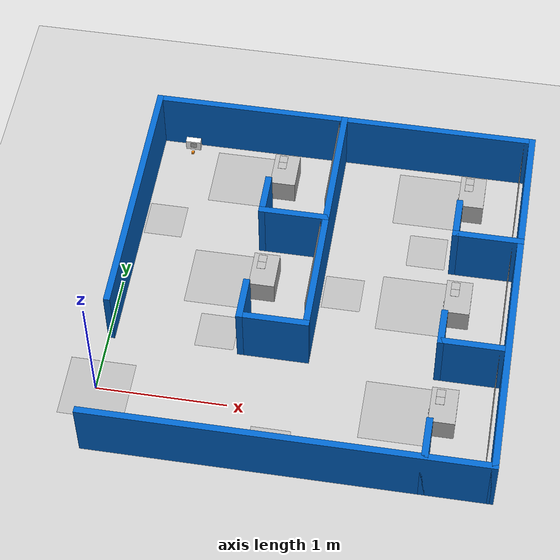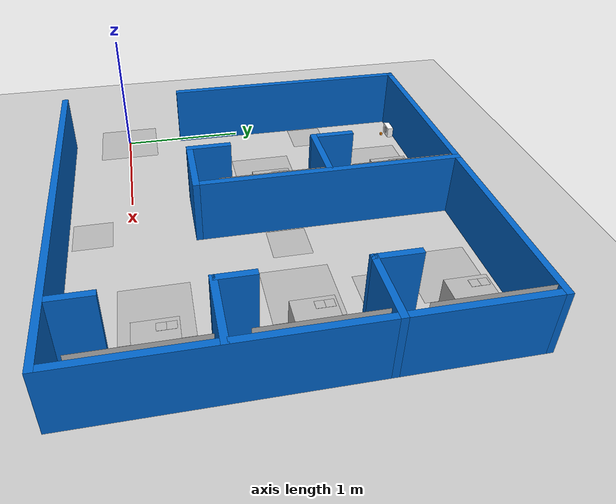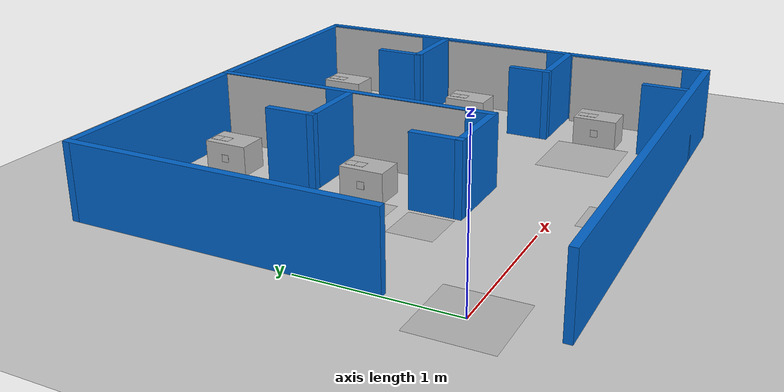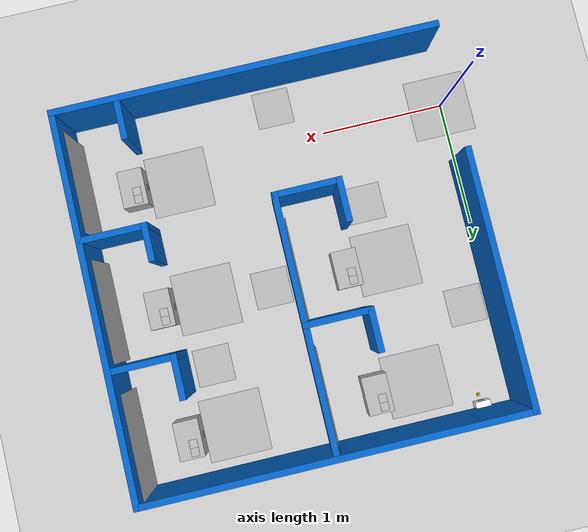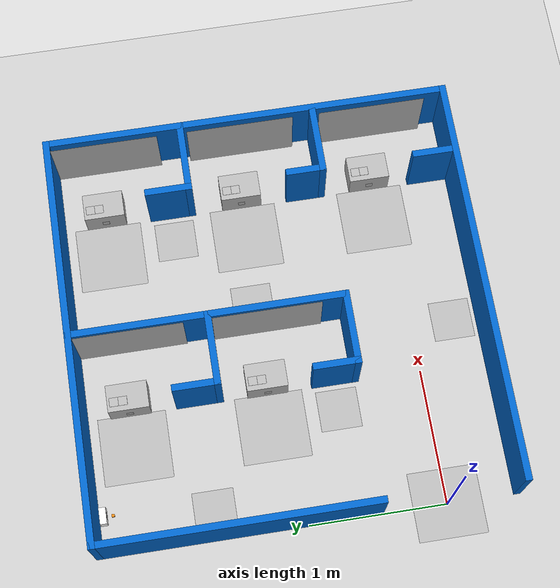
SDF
<sdf version="1.7">
 <world name="default">
  <light name="sun" type="directional">
   <pose>0 0 10 0 -0 0</pose>
   <diffuse>0.8 0.8 0.8 1</diffuse>
   <specular>0.2 0.2 0.2 1</specular>
   <attenuation>
    <range>1000</range>
    <constant>0.9</constant>
    <linear>0.01</linear>
    <quadratic>0.001</quadratic>
   </attenuation>
   <direction>-0.5 0.1 -0.9</direction>
   <spot><inner_angle>0</inner_angle><outer_angle>0</outer_angle><falloff>0</falloff></spot>
  </light>
  <model name="ground_plane">
   <static>1</static>
   <link name="link">
    <collision name="collision">
     <geometry><plane><normal>0 0 1</normal><size>100 100</size></plane></geometry>
     <surface>
      <contact><collide_bitmask>65535</collide_bitmask></contact>
      <friction><ode><mu>100</mu><mu2>50</mu2></ode></friction>
     </surface>
    </collision>
    <visual name="visual">
     <cast_shadows>0</cast_shadows>
     <geometry><plane><normal>0 0 1</normal><size>100 100</size></plane></geometry>
     <material>
      <script><uri>file://media/materials/scripts/gazebo.material</uri><name>Gazebo/Grey</name></script>
     </material>
    </visual>
   </link>
  </model>
  <gravity>0 0 -9.8</gravity>
  <magnetic_field>6e-06 2.3e-05 -4.2e-05</magnetic_field>
  <atmosphere type="adiabatic"/>
  <physics type="ode">
   <max_step_size>0.001</max_step_size>
   <real_time_factor>1</real_time_factor>
   <real_time_update_rate>1000</real_time_update_rate>
  </physics>
  <scene><ambient>0.4 0.4 0.4 1</ambient><background>0.7 0.7 0.7 1</background><shadows>1</shadows></scene>
  <spherical_coordinates>
   <surface_model>EARTH_WGS84</surface_model>
   <latitude_deg>0</latitude_deg>
   <longitude_deg>0</longitude_deg>
   <elevation>0</elevation>
   <heading_deg>0</heading_deg>
  </spherical_coordinates>
  <model name="reinovo_raicom_oryxbot">
   <link name="link_0">
    <inertial>
     <mass>1</mass>
     <inertia>
      <ixx>0.166667</ixx>
      <ixy>0</ixy>
      <ixz>0</ixz>
      <iyy>0.166667</iyy>
      <iyz>0</iyz>
      <izz>0.166667</izz>
     </inertia>
    </inertial>
    <pose>-1.32 1.12 0.01 0 0 -1.5707</pose>
    <visual name="visual">
     <geometry><box><size>0.02 0.02 0.02</size></box></geometry>
     <material>
      <lighting>1</lighting>
      <script><uri>file://media/materials/scripts/gazebo.material</uri><name>Gazebo/Orange</name></script>
      <shader type="pixel"><normal_map>__default__</normal_map></shader>
     </material>
    </visual>
    <collision name="collision">
     <geometry><box><size>0.02 0.02 0.02</size></box></geometry>
     <surface>
      <friction>
       <ode><mu>1</mu><mu2>1</mu2><fdir1>0 0 0</fdir1><slip1>0</slip1><slip2>0</slip2></ode>
       <torsional>
        <coefficient>1</coefficient>
        <patch_radius>0</patch_radius>
        <surface_radius>0</surface_radius>
        <use_patch_radius>1</use_patch_radius>
        <ode><slip>0</slip></ode>
       </torsional>
      </friction>
      <bounce><restitution_coefficient>0</restitution_coefficient><threshold>1e+06</threshold></bounce>
      <contact>
       <collide_without_contact>0</collide_without_contact>
       <collide_without_contact_bitmask>1</collide_without_contact_bitmask>
       <collide_bitmask>1</collide_bitmask>
       <ode>
        <soft_cfm>0</soft_cfm>
        <soft_erp>0.2</soft_erp>
        <kp>1e+13</kp>
        <kd>1</kd>
        <max_vel>0.01</max_vel>
        <min_depth>0</min_depth>
       </ode>
       <bullet>
        <split_impulse>1</split_impulse>
        <split_impulse_penetration_threshold>-0.01</split_impulse_penetration_threshold>
        <soft_cfm>0</soft_cfm>
        <soft_erp>0.2</soft_erp>
        <kp>1e+13</kp>
        <kd>1</kd>
       </bullet>
      </contact>
     </surface>
    </collision>
    <sensor name="charge_contact" type="contact">
     <contact><collision>collision</collision><topic>__default_topic__</topic></contact>
     <plugin name="my_plugin" filename="libChargeContact.so"><object>charge_port</object></plugin>
    </sensor>
   </link>
   <model name="rei_begin">
    <link name="link_0">
     <visual name="visual">
      <geometry><mesh><uri>model://reinovo_raicom_oryxbot/rei_begin/meshes/begin.dae</uri></mesh></geometry>
     </visual>
     <inertial>
      <inertia><ixx>1</ixx><ixy>0</ixy><ixz>0</ixz><iyy>1</iyy><iyz>0</iyz><izz>1</izz></inertia>
      <mass>1</mass>
     </inertial>
    </link>
    <pose>-1.6 -1.25 0.001 0 -0 0</pose>
   </model>
   <model name="rei_factory3">
    <link name="link_0">
     <visual name="visual">
      <geometry><mesh><uri>model://reinovo_raicom_oryxbot/rei_factory3/meshes/factory3.dae</uri></mesh></geometry>
     </visual>
     <inertial>
      <inertia><ixx>1</ixx><ixy>0</ixy><ixz>0</ixz><iyy>1</iyy><iyz>0</iyz><izz>1</izz></inertia>
      <mass>1</mass>
     </inertial>
    </link>
    <pose>1.35 -1.2 0.25 1.5707 -0 -1.5707</pose>
   </model>
   <model name="rei_block_stage">
    <static>0</static>
    <link name="block_stage_link">
     <inertial>
      <mass>10</mass>
      <inertia><ixx>1</ixx><ixy>0</ixy><ixz>0</ixz><iyy>1</iyy><iyz>0</iyz><izz>1</izz></inertia>
     </inertial>
     <collision name="collision"><geometry><box><size>0.2 0.3 0.2</size></box></geometry></collision>
     <visual name="visual_1">
      <cast_shadows>0</cast_shadows>
      <geometry><box><size>0.2 0.3 0.2</size></box></geometry>
     </visual>
     <visual name="visual_2">
      <pose>0.105 0 0 0 -1.5707 0</pose>
      <cast_shadows>0</cast_shadows>
      <geometry><box><size>0.05 0.05 0.001</size></box></geometry>
      <material>
       <script>
        <uri>model://rei_block_stage/materials/scripts</uri>
        <uri>model://rei_block_stage/materials/textures</uri>
        <name>reinovo/rei_block_stage</name>
       </script>
      </material>
     </visual>
     <visual name="visual_3">
      <pose>0.03 0.1 -0.105 0 -0 0</pose>
      <cast_shadows>0</cast_shadows>
      <geometry><box><size>0.065 0.065 0.001</size></box></geometry>
      <material>
       <script>
        <uri>model://rei_block_stage/materials_goal/scripts</uri>
        <uri>model://rei_block_stage/materials_goal/textures</uri>
        <name>reinovo/rei_goal</name>
       </script>
      </material>
     </visual>
     <visual name="visual_4">
      <pose>0.03 0.035 -0.105 0 -0 0</pose>
      <cast_shadows>0</cast_shadows>
      <geometry><box><size>0.065 0.065 0.001</size></box></geometry>
      <material>
       <script>
        <uri>model://rei_block_stage/materials_goal/scripts</uri>
        <uri>model://rei_block_stage/materials_goal/textures</uri>
        <name>reinovo/rei_goal</name>
       </script>
      </material>
     </visual>
    </link>
    <pose>-0.514479 0.904463 0.1 3.14159 0.0 3.14159</pose>
   </model>
   <model name="rei_block_stage_clone">
    <static>0</static>
    <link name="block_stage_link">
     <inertial>
      <mass>10</mass>
      <inertia><ixx>1</ixx><ixy>0</ixy><ixz>0</ixz><iyy>1</iyy><iyz>0</iyz><izz>1</izz></inertia>
     </inertial>
     <collision name="collision"><geometry><box><size>0.2 0.3 0.2</size></box></geometry></collision>
     <visual name="visual_1">
      <cast_shadows>0</cast_shadows>
      <geometry><box><size>0.2 0.3 0.2</size></box></geometry>
     </visual>
     <visual name="visual_2">
      <pose>0.105 0 0 0 -1.5707 0</pose>
      <cast_shadows>0</cast_shadows>
      <geometry><box><size>0.05 0.05 0.001</size></box></geometry>
      <material>
       <script>
        <uri>model://rei_block_stage/materials/scripts</uri>
        <uri>model://rei_block_stage/materials/textures</uri>
        <name>reinovo/rei_block_stage</name>
       </script>
      </material>
     </visual>
     <visual name="visual_3">
      <pose>0.03 0.1 -0.105 0 -0 0</pose>
      <cast_shadows>0</cast_shadows>
      <geometry><box><size>0.065 0.065 0.001</size></box></geometry>
      <material>
       <script>
        <uri>model://rei_block_stage/materials_goal/scripts</uri>
        <uri>model://rei_block_stage/materials_goal/textures</uri>
        <name>reinovo/rei_goal</name>
       </script>
      </material>
     </visual>
     <visual name="visual_4">
      <pose>0.03 0.035 -0.105 0 -0 0</pose>
      <cast_shadows>0</cast_shadows>
      <geometry><box><size>0.065 0.065 0.001</size></box></geometry>
      <material>
       <script>
        <uri>model://rei_block_stage/materials_goal/scripts</uri>
        <uri>model://rei_block_stage/materials_goal/textures</uri>
        <name>reinovo/rei_goal</name>
       </script>
      </material>
     </visual>
    </link>
    <pose>-0.514479 -0.104706 0.1 3.14159 0.0 3.14159</pose>
   </model>
   <model name="rei_block_stage_clone_0">
    <static>0</static>
    <link name="block_stage_link">
     <inertial>
      <mass>10</mass>
      <inertia><ixx>1</ixx><ixy>0</ixy><ixz>0</ixz><iyy>1</iyy><iyz>0</iyz><izz>1</izz></inertia>
     </inertial>
     <collision name="collision"><geometry><box><size>0.2 0.3 0.2</size></box></geometry></collision>
     <visual name="visual_1">
      <cast_shadows>0</cast_shadows>
      <geometry><box><size>0.2 0.3 0.2</size></box></geometry>
     </visual>
     <visual name="visual_2">
      <pose>0.105 0 0 0 -1.5707 0</pose>
      <cast_shadows>0</cast_shadows>
      <geometry><box><size>0.05 0.05 0.001</size></box></geometry>
      <material>
       <script>
        <uri>model://rei_block_stage/materials/scripts</uri>
        <uri>model://rei_block_stage/materials/textures</uri>
        <name>reinovo/rei_block_stage</name>
       </script>
      </material>
     </visual>
     <visual name="visual_3">
      <pose>0.03 0.1 -0.105 0 -0 0</pose>
      <cast_shadows>0</cast_shadows>
      <geometry><box><size>0.065 0.065 0.001</size></box></geometry>
      <material>
       <script>
        <uri>model://rei_block_stage/materials_goal/scripts</uri>
        <uri>model://rei_block_stage/materials_goal/textures</uri>
        <name>reinovo/rei_goal</name>
       </script>
      </material>
     </visual>
     <visual name="visual_4">
      <pose>0.03 0.035 -0.105 0 -0 0</pose>
      <cast_shadows>0</cast_shadows>
      <geometry><box><size>0.065 0.065 0.001</size></box></geometry>
      <material>
       <script>
        <uri>model://rei_block_stage/materials_goal/scripts</uri>
        <uri>model://rei_block_stage/materials_goal/textures</uri>
        <name>reinovo/rei_goal</name>
       </script>
      </material>
     </visual>
    </link>
    <pose>0.992586 0.903692 0.1 3.14159 0.0 3.14159</pose>
   </model>
   <model name="rei_block_stage_clone_1">
    <static>0</static>
    <link name="block_stage_link">
     <inertial>
      <mass>10</mass>
      <inertia><ixx>1</ixx><ixy>0</ixy><ixz>0</ixz><iyy>1</iyy><iyz>0</iyz><izz>1</izz></inertia>
     </inertial>
     <collision name="collision"><geometry><box><size>0.2 0.3 0.2</size></box></geometry></collision>
     <visual name="visual_1">
      <cast_shadows>0</cast_shadows>
      <geometry><box><size>0.2 0.3 0.2</size></box></geometry>
     </visual>
     <visual name="visual_2">
      <pose>0.105 0 0 0 -1.5707 0</pose>
      <cast_shadows>0</cast_shadows>
      <geometry><box><size>0.05 0.05 0.001</size></box></geometry>
      <material>
       <script>
        <uri>model://rei_block_stage/materials/scripts</uri>
        <uri>model://rei_block_stage/materials/textures</uri>
        <name>reinovo/rei_block_stage</name>
       </script>
      </material>
     </visual>
     <visual name="visual_3">
      <pose>0.03 0.1 -0.105 0 -0 0</pose>
      <cast_shadows>0</cast_shadows>
      <geometry><box><size>0.065 0.065 0.001</size></box></geometry>
      <material>
       <script>
        <uri>model://rei_block_stage/materials_goal/scripts</uri>
        <uri>model://rei_block_stage/materials_goal/textures</uri>
        <name>reinovo/rei_goal</name>
       </script>
      </material>
     </visual>
     <visual name="visual_4">
      <pose>0.03 0.035 -0.105 0 -0 0</pose>
      <cast_shadows>0</cast_shadows>
      <geometry><box><size>0.065 0.065 0.001</size></box></geometry>
      <material>
       <script>
        <uri>model://rei_block_stage/materials_goal/scripts</uri>
        <uri>model://rei_block_stage/materials_goal/textures</uri>
        <name>reinovo/rei_goal</name>
       </script>
      </material>
     </visual>
    </link>
    <pose>0.992586 -0.135218 0.1 3.14159 0.0 3.14159</pose>
   </model>
   <model name="rei_block_stage_clone_2">
    <static>0</static>
    <link name="block_stage_link">
     <inertial>
      <mass>10</mass>
      <inertia><ixx>1</ixx><ixy>0</ixy><ixz>0</ixz><iyy>1</iyy><iyz>0</iyz><izz>1</izz></inertia>
     </inertial>
     <collision name="collision"><geometry><box><size>0.2 0.3 0.2</size></box></geometry></collision>
     <visual name="visual_1">
      <cast_shadows>0</cast_shadows>
      <geometry><box><size>0.2 0.3 0.2</size></box></geometry>
     </visual>
     <visual name="visual_2">
      <pose>0.105 0 0 0 -1.5707 0</pose>
      <cast_shadows>0</cast_shadows>
      <geometry><box><size>0.05 0.05 0.001</size></box></geometry>
      <material>
       <script>
        <uri>model://rei_block_stage/materials/scripts</uri>
        <uri>model://rei_block_stage/materials/textures</uri>
        <name>reinovo/rei_block_stage</name>
       </script>
      </material>
     </visual>
     <visual name="visual_3">
      <pose>0.03 0.1 -0.105 0 -0 0</pose>
      <cast_shadows>0</cast_shadows>
      <geometry><box><size>0.065 0.065 0.001</size></box></geometry>
      <material>
       <script>
        <uri>model://rei_block_stage/materials_goal/scripts</uri>
        <uri>model://rei_block_stage/materials_goal/textures</uri>
        <name>reinovo/rei_goal</name>
       </script>
      </material>
     </visual>
     <visual name="visual_4">
      <pose>0.03 0.035 -0.105 0 -0 0</pose>
      <cast_shadows>0</cast_shadows>
      <geometry><box><size>0.065 0.065 0.001</size></box></geometry>
      <material>
       <script>
        <uri>model://rei_block_stage/materials_goal/scripts</uri>
        <uri>model://rei_block_stage/materials_goal/textures</uri>
        <name>reinovo/rei_goal</name>
       </script>
      </material>
     </visual>
    </link>
    <pose>0.992586 -1.1229 0.1 3.14159 0.0 3.14159</pose>
   </model>
   <model name="rei_goal">
    <link name="link_0">
     <visual name="visual">
      <geometry><mesh><uri>model://reinovo_raicom_oryxbot/rei_goal/meshes/goal.dae</uri></mesh></geometry>
     </visual>
     <inertial>
      <inertia><ixx>1</ixx><ixy>0</ixy><ixz>0</ixz><iyy>1</iyy><iyz>0</iyz><izz>1</izz></inertia>
      <mass>1</mass>
     </inertial>
    </link>
    <pose>-0.856971 0.904463 0.005 0 -0 0</pose>
   </model>
   <model name="rei_goal_0">
    <link name="link_0">
     <visual name="visual">
      <geometry><mesh><uri>model://reinovo_raicom_oryxbot/rei_goal/meshes/goal.dae</uri></mesh></geometry>
     </visual>
     <inertial>
      <inertia><ixx>1</ixx><ixy>0</ixy><ixz>0</ixz><iyy>1</iyy><iyz>0</iyz><izz>1</izz></inertia>
      <mass>1</mass>
     </inertial>
    </link>
    <pose>-0.858139 -0.104706 0.005 0 -0 0</pose>
   </model>
   <model name="rei_goal_1">
    <link name="link_0">
     <visual name="visual">
      <geometry><mesh><uri>model://reinovo_raicom_oryxbot/rei_goal/meshes/goal.dae</uri></mesh></geometry>
     </visual>
     <inertial>
      <inertia><ixx>1</ixx><ixy>0</ixy><ixz>0</ixz><iyy>1</iyy><iyz>0</iyz><izz>1</izz></inertia>
      <mass>1</mass>
     </inertial>
    </link>
    <pose>0.641976 -1.1229 0.005 0 -0 0</pose>
   </model>
   <model name="rei_goal_2">
    <link name="link_0">
     <visual name="visual">
      <geometry><mesh><uri>model://reinovo_raicom_oryxbot/rei_goal/meshes/goal.dae</uri></mesh></geometry>
     </visual>
     <inertial>
      <inertia><ixx>1</ixx><ixy>0</ixy><ixz>0</ixz><iyy>1</iyy><iyz>0</iyz><izz>1</izz></inertia>
      <mass>1</mass>
     </inertial>
    </link>
    <pose>0.641058 -0.135218 0.005 0 -0 0</pose>
   </model>
   <model name="rei_goal_3">
    <link name="link_0">
     <visual name="visual">
      <geometry><mesh><uri>model://reinovo_raicom_oryxbot/rei_goal/meshes/goal.dae</uri></mesh></geometry>
     </visual>
     <inertial>
      <inertia><ixx>1</ixx><ixy>0</ixy><ixz>0</ixz><iyy>1</iyy><iyz>0</iyz><izz>1</izz></inertia>
      <mass>1</mass>
     </inertial>
    </link>
    <pose>0.642407 0.903692 0.005 0 -0 0</pose>
   </model>
   <model name="rei_factory2">
    <link name="link_0">
     <visual name="visual">
      <geometry><mesh><uri>model://reinovo_raicom_oryxbot/rei_factory2/meshes/factory2.dae</uri></mesh></geometry>
     </visual>
     <inertial>
      <inertia><ixx>1</ixx><ixy>0</ixy><ixz>0</ixz><iyy>1</iyy><iyz>0</iyz><izz>1</izz></inertia>
      <mass>1</mass>
     </inertial>
    </link>
    <pose>1.35 -0.2 0.25 1.5707 -0 -1.5707</pose>
   </model>
   <model name="rei_factory1">
    <link name="link_0">
     <visual name="visual">
      <geometry><mesh><uri>model://reinovo_raicom_oryxbot/rei_factory1/meshes/factory1.dae</uri></mesh></geometry>
     </visual>
     <inertial>
      <inertia><ixx>1</ixx><ixy>0</ixy><ixz>0</ixz><iyy>1</iyy><iyz>0</iyz><izz>1</izz></inertia>
      <mass>1</mass>
     </inertial>
    </link>
    <pose>1.35 0.825 0.25 1.5707 -0 -1.5707</pose>
   </model>
   <model name="rei_obs">
    <link name="link_0">
     <visual name="visual">
      <geometry><mesh><uri>model://reinovo_raicom_oryxbot/rei_obs/meshes/obs.dae</uri></mesh></geometry>
     </visual>
     <inertial>
      <inertia><ixx>1</ixx><ixy>0</ixy><ixz>0</ixz><iyy>1</iyy><iyz>0</iyz><izz>1</izz></inertia>
      <mass>1</mass>
     </inertial>
    </link>
    <pose>-0.8 -0.6 0.005 0 -0 0</pose>
   </model>
   <model name="rei_obs_0">
    <link name="link_0">
     <visual name="visual">
      <geometry><mesh><uri>model://reinovo_raicom_oryxbot/rei_obs/meshes/obs.dae</uri></mesh></geometry>
     </visual>
     <inertial>
      <inertia><ixx>1</ixx><ixy>0</ixy><ixz>0</ixz><iyy>1</iyy><iyz>0</iyz><izz>1</izz></inertia>
      <mass>1</mass>
     </inertial>
    </link>
    <pose>-1.4 0.4 0.005 0 -0 0</pose>
   </model>
   <model name="rei_obs_1">
    <link name="link_0">
     <visual name="visual">
      <geometry><mesh><uri>model://reinovo_raicom_oryxbot/rei_obs/meshes/obs.dae</uri></mesh></geometry>
     </visual>
     <inertial>
      <inertia><ixx>1</ixx><ixy>0</ixy><ixz>0</ixz><iyy>1</iyy><iyz>0</iyz><izz>1</izz></inertia>
      <mass>1</mass>
     </inertial>
    </link>
    <pose>-0.25 -1.55 0.005 0 -0 0</pose>
   </model>
   <model name="rei_obs_2">
    <link name="link_0">
     <visual name="visual">
      <geometry><mesh><uri>model://reinovo_raicom_oryxbot/rei_obs/meshes/obs.dae</uri></mesh></geometry>
     </visual>
     <inertial>
      <inertia><ixx>1</ixx><ixy>0</ixy><ixz>0</ixz><iyy>1</iyy><iyz>0</iyz><izz>1</izz></inertia>
      <mass>1</mass>
     </inertial>
    </link>
    <pose>0.7 0.4 0.005 0 -0 0</pose>
   </model>
   <model name="rei_obs_3">
    <link name="link_0">
     <visual name="visual">
      <geometry><mesh><uri>model://reinovo_raicom_oryxbot/rei_obs/meshes/obs.dae</uri></mesh></geometry>
     </visual>
     <inertial>
      <inertia><ixx>1</ixx><ixy>0</ixy><ixz>0</ixz><iyy>1</iyy><iyz>0</iyz><izz>1</izz></inertia>
      <mass>1</mass>
     </inertial>
    </link>
    <pose>0.1 -0.1 0.005 0 -0 0</pose>
   </model>
   <model name="rei_factory4">
    <link name="link_0">
     <visual name="visual">
      <geometry><mesh><uri>model://reinovo_raicom_oryxbot/rei_factory4/meshes/factory4.dae</uri></mesh></geometry>
     </visual>
     <inertial>
      <inertia><ixx>1</ixx><ixy>0</ixy><ixz>0</ixz><iyy>1</iyy><iyz>0</iyz><izz>1</izz></inertia>
      <mass>1</mass>
     </inertial>
    </link>
    <pose>-0.125 0.825 0.25 1.5707 -0 -1.5707</pose>
   </model>
   <model name="rei_factory5">
    <link name="link_0">
     <visual name="visual">
      <geometry><mesh><uri>model://reinovo_raicom_oryxbot/rei_factory5/meshes/factory5.dae</uri></mesh></geometry>
     </visual>
     <inertial>
      <inertia><ixx>1</ixx><ixy>0</ixy><ixz>0</ixz><iyy>1</iyy><iyz>0</iyz><izz>1</izz></inertia>
      <mass>1</mass>
     </inertial>
    </link>
    <pose>-0.125 -0.18 0.25 1.5707 -0 -1.5707</pose>
   </model>
   <model name="reinovo_match">
    <pose>-0.088531 -0.254283 0 0 -0 0</pose>
    <link name="Wall_0">
     <collision name="Wall_0_Collision">
      <laser_retro>500</laser_retro>
      <geometry><box><size>3.05 0.05 0.5</size></box></geometry>
      <pose>0 0 0.25 0 -0 0</pose>
     </collision>
     <visual name="Wall_0_Visual">
      <pose>0 0 0.25 0 -0 0</pose>
      <geometry><box><size>3.05 0.05 0.5</size></box></geometry>
      <material>
       <ambient>0 0.4 0.8 1</ambient>
       <diffuse>0 0.4 0.8 1</diffuse>
       <specular>1 1 1 1</specular>
       <emissive>0 0 0 1</emissive>
      </material>
      <meta><layer>0</layer></meta>
     </visual>
     <pose>0 -1.5 0 0 -0 0</pose>
    </link>
    <link name="Wall_11">
     <collision name="Wall_11_Collision">
      <laser_retro>500</laser_retro>
      <geometry><box><size>0.3 0.05 0.5</size></box></geometry>
      <pose>0 0 0.25 0 -0 0</pose>
     </collision>
     <visual name="Wall_11_Visual">
      <pose>0 0 0.25 0 -0 0</pose>
      <geometry><box><size>0.3 0.05 0.5</size></box></geometry>
      <material>
       <ambient>0 0.4 0.8 1</ambient>
       <diffuse>0 0.4 0.8 1</diffuse>
       <specular>1 1 1 1</specular>
       <emissive>0 0 0 1</emissive>
      </material>
      <meta><layer>0</layer></meta>
     </visual>
     <pose>1 -0.375 0 0 -0 1.5708</pose>
    </link>
    <link name="Wall_13">
     <collision name="Wall_13_Collision">
      <laser_retro>500</laser_retro>
      <geometry><box><size>0.35 0.05 0.5</size></box></geometry>
      <pose>0 0 0.25 0 -0 0</pose>
     </collision>
     <visual name="Wall_13_Visual">
      <pose>0 0 0.25 0 -0 0</pose>
      <geometry><box><size>0.35 0.05 0.5</size></box></geometry>
      <material>
       <ambient>0 0.4 0.8 1</ambient>
       <diffuse>0 0.4 0.8 1</diffuse>
       <specular>1 1 1 1</specular>
       <emissive>0 0 0 1</emissive>
      </material>
      <meta><layer>0</layer></meta>
     </visual>
     <pose>1 0.65 0 0 -0 1.5708</pose>
    </link>
    <link name="Wall_16">
     <collision name="Wall_16_Collision">
      <laser_retro>500</laser_retro>
      <geometry><box><size>0.55 0.05 0.5</size></box></geometry>
      <pose>0 0 0.25 0 -0 0</pose>
     </collision>
     <visual name="Wall_16_Visual">
      <pose>0 0 0.25 0 -0 0</pose>
      <geometry><box><size>0.55 0.05 0.5</size></box></geometry>
      <material>
       <ambient>0 0.4 0.8 1</ambient>
       <diffuse>0 0.4 0.8 1</diffuse>
       <specular>1 1 1 1</specular>
       <emissive>0 0 0 1</emissive>
      </material>
      <meta><layer>0</layer></meta>
     </visual>
     <pose>1.25 0.5 0 0 -0 3.14159</pose>
    </link>
    <link name="Wall_18">
     <collision name="Wall_18_Collision">
      <laser_retro>500</laser_retro>
      <geometry><box><size>0.55 0.05 0.5</size></box></geometry>
      <pose>0 0 0.25 0 -0 0</pose>
     </collision>
     <visual name="Wall_18_Visual">
      <pose>0 0 0.25 0 -0 0</pose>
      <geometry><box><size>0.55 0.05 0.5</size></box></geometry>
      <material>
       <ambient>0 0.4 0.8 1</ambient>
       <diffuse>0 0.4 0.8 1</diffuse>
       <specular>1 1 1 1</specular>
       <emissive>0 0 0 1</emissive>
      </material>
      <meta><layer>0</layer></meta>
     </visual>
     <pose>1.25 -0.5 0 0 -0 3.14159</pose>
    </link>
    <link name="Wall_2">
     <collision name="Wall_2_Collision">
      <laser_retro>500</laser_retro>
      <geometry><box><size>3.05 0.05 0.5</size></box></geometry>
      <pose>0 0 0.25 0 -0 0</pose>
     </collision>
     <visual name="Wall_2_Visual">
      <pose>0 0 0.25 0 -0 0</pose>
      <geometry><box><size>3.05 0.05 0.5</size></box></geometry>
      <material>
       <ambient>0 0.4 0.8 1</ambient>
       <diffuse>0 0.4 0.8 1</diffuse>
       <specular>1 1 1 1</specular>
       <emissive>0 0 0 1</emissive>
      </material>
      <meta><layer>0</layer></meta>
     </visual>
     <pose>1.5 0 0 0 -0 1.5708</pose>
    </link>
    <link name="Wall_20">
     <collision name="Wall_20_Collision">
      <laser_retro>500</laser_retro>
      <geometry><box><size>0.55 0.05 0.5</size></box></geometry>
      <pose>0 0 0.25 0 -0 0</pose>
     </collision>
     <visual name="Wall_20_Visual">
      <pose>0 0 0.25 0 -0 0</pose>
      <geometry><box><size>0.55 0.05 0.5</size></box></geometry>
      <material>
       <ambient>0 0.4 0.8 1</ambient>
       <diffuse>0 0.4 0.8 1</diffuse>
       <specular>1 1 1 1</specular>
       <emissive>0 0 0 1</emissive>
      </material>
      <meta><layer>0</layer></meta>
     </visual>
     <pose>-0.25 0.5 0 0 -0 3.14159</pose>
    </link>
    <link name="Wall_22">
     <collision name="Wall_22_Collision">
      <laser_retro>500</laser_retro>
      <geometry><box><size>0.55 0.05 0.5</size></box></geometry>
      <pose>0 0 0.25 0 -0 0</pose>
     </collision>
     <visual name="Wall_22_Visual">
      <pose>0 0 0.25 0 -0 0</pose>
      <geometry><box><size>0.55 0.05 0.5</size></box></geometry>
      <material>
       <ambient>0 0.4 0.8 1</ambient>
       <diffuse>0 0.4 0.8 1</diffuse>
       <specular>1 1 1 1</specular>
       <emissive>0 0 0 1</emissive>
      </material>
      <meta><layer>0</layer></meta>
     </visual>
     <pose>-0.25 -0.5 0 0 -0 3.14159</pose>
    </link>
    <link name="Wall_24">
     <collision name="Wall_24_Collision">
      <laser_retro>500</laser_retro>
      <geometry><box><size>2.05 0.05 0.5</size></box></geometry>
      <pose>0 0 0.25 0 -0 0</pose>
     </collision>
     <visual name="Wall_24_Visual">
      <pose>0 0 0.25 0 -0 0</pose>
      <geometry><box><size>2.05 0.05 0.5</size></box></geometry>
      <material>
       <ambient>0 0.4 0.8 1</ambient>
       <diffuse>0 0.4 0.8 1</diffuse>
       <specular>1 1 1 1</specular>
       <emissive>0 0 0 1</emissive>
      </material>
      <meta><layer>0</layer></meta>
     </visual>
     <pose>0 0.5 0 0 -0 -1.5708</pose>
    </link>
    <link name="Wall_26">
     <collision name="Wall_26_Collision">
      <laser_retro>500</laser_retro>
      <geometry><box><size>0.35 0.05 0.5</size></box></geometry>
      <pose>0 0 0.25 0 -0 0</pose>
     </collision>
     <visual name="Wall_26_Visual">
      <pose>0 0 0.25 0 -0 0</pose>
      <geometry><box><size>0.35 0.05 0.5</size></box></geometry>
      <material>
       <ambient>0 0.4 0.8 1</ambient>
       <diffuse>0 0.4 0.8 1</diffuse>
       <specular>1 1 1 1</specular>
       <emissive>0 0 0 1</emissive>
      </material>
      <meta><layer>0</layer></meta>
     </visual>
     <pose>-0.5 0.65 0 0 -0 1.5708</pose>
    </link>
    <link name="Wall_28">
     <collision name="Wall_28_Collision">
      <laser_retro>500</laser_retro>
      <geometry><box><size>0.35 0.05 0.5</size></box></geometry>
      <pose>0 0 0.25 0 -0 0</pose>
     </collision>
     <visual name="Wall_28_Visual">
      <pose>0 0 0.25 0 -0 0</pose>
      <geometry><box><size>0.35 0.05 0.5</size></box></geometry>
      <material>
       <ambient>0 0.4 0.8 1</ambient>
       <diffuse>0 0.4 0.8 1</diffuse>
       <specular>1 1 1 1</specular>
       <emissive>0 0 0 1</emissive>
      </material>
      <meta><layer>0</layer></meta>
     </visual>
     <pose>-0.5 -0.35 0 0 -0 1.5708</pose>
    </link>
    <link name="Wall_4">
     <collision name="Wall_4_Collision">
      <laser_retro>500</laser_retro>
      <geometry><box><size>3.05 0.05 0.5</size></box></geometry>
      <pose>0 0 0.25 0 -0 0</pose>
     </collision>
     <visual name="Wall_4_Visual">
      <pose>0 0 0.25 0 -0 0</pose>
      <geometry><box><size>3.05 0.05 0.5</size></box></geometry>
      <material>
       <ambient>0 0.4 0.8 1</ambient>
       <diffuse>0 0.4 0.8 1</diffuse>
       <specular>1 1 1 1</specular>
       <emissive>0 0 0 1</emissive>
      </material>
      <meta><layer>0</layer></meta>
     </visual>
     <pose>0 1.5 0 0 -0 3.14159</pose>
    </link>
    <link name="Wall_6">
     <collision name="Wall_6_Collision">
      <laser_retro>500</laser_retro>
      <geometry><box><size>2.05 0.05 0.5</size></box></geometry>
      <pose>0 0 0.25 0 -0 0</pose>
     </collision>
     <visual name="Wall_6_Visual">
      <pose>0 0 0.25 0 -0 0</pose>
      <geometry><box><size>2.05 0.05 0.5</size></box></geometry>
      <material>
       <ambient>0 0.4 0.8 1</ambient>
       <diffuse>0 0.4 0.8 1</diffuse>
       <specular>1 1 1 1</specular>
       <emissive>0 0 0 1</emissive>
      </material>
      <meta><layer>0</layer></meta>
     </visual>
     <pose>-1.5 0.5 0 0 -0 -1.5708</pose>
    </link>
    <link name="Wall_8">
     <collision name="Wall_8_Collision">
      <laser_retro>500</laser_retro>
      <geometry><box><size>0.35 0.05 0.5</size></box></geometry>
      <pose>0 0 0.25 0 -0 0</pose>
     </collision>
     <visual name="Wall_8_Visual">
      <pose>0 0 0.25 0 -0 0</pose>
      <geometry><box><size>0.35 0.05 0.5</size></box></geometry>
      <material>
       <ambient>0 0.4 0.8 1</ambient>
       <diffuse>0 0.4 0.8 1</diffuse>
       <specular>1 1 1 1</specular>
       <emissive>0 0 0 1</emissive>
      </material>
      <meta><layer>0</layer></meta>
     </visual>
     <pose>1 -1.35 0 0 -0 1.5708</pose>
    </link>
    <static>1</static>
   </model>
   <model name="small_marker_charge_pile">
    <link name="link_0">
     <inertial>
      <mass>10</mass>
      <inertia>
       <ixx>0.01875</ixx>
       <ixy>0</ixy>
       <ixz>0</ixz>
       <iyy>0.00883333</iyy>
       <iyz>0</iyz>
       <izz>0.0140833</izz>
      </inertia>
     </inertial>
     <pose>0.002297 -0.003336 0.045 0 -0 0</pose>
     <visual name="visual">
      <geometry><box><size>0.05 0.12 0.09</size></box></geometry>
      <material>
       <lighting>1</lighting>
       <shader type="pixel"><normal_map>__default__</normal_map></shader>
       <ambient>1 1 1 1</ambient>
       <diffuse>1 1 1 1</diffuse>
       <specular>1 1 1 1</specular>
       <emissive>0 0 0 1</emissive>
      </material>
     </visual>
     <collision name="collision">
      <geometry><box><size>0.05 0.12 0.09</size></box></geometry>
      <surface>
       <friction>
        <ode><mu>1</mu><mu2>1</mu2><fdir1>0 0 0</fdir1><slip1>0</slip1><slip2>0</slip2></ode>
        <torsional>
         <coefficient>1</coefficient>
         <patch_radius>0</patch_radius>
         <surface_radius>0</surface_radius>
         <use_patch_radius>1</use_patch_radius>
         <ode><slip>0</slip></ode>
        </torsional>
       </friction>
       <bounce><restitution_coefficient>0</restitution_coefficient><threshold>1e+06</threshold></bounce>
       <contact>
        <collide_without_contact>0</collide_without_contact>
        <collide_without_contact_bitmask>1</collide_without_contact_bitmask>
        <collide_bitmask>1</collide_bitmask>
        <ode>
         <soft_cfm>0</soft_cfm>
         <soft_erp>0.2</soft_erp>
         <kp>1e+13</kp>
         <kd>1</kd>
         <max_vel>0.01</max_vel>
         <min_depth>0</min_depth>
        </ode>
        <bullet>
         <split_impulse>1</split_impulse>
         <split_impulse_penetration_threshold>-0.01</split_impulse_penetration_threshold>
         <soft_cfm>0</soft_cfm>
         <soft_erp>0.2</soft_erp>
         <kp>1e+13</kp>
         <kd>1</kd>
        </bullet>
       </contact>
      </surface>
     </collision>
    </link>
    <link name="link_1">
     <inertial>
      <mass>1</mass>
      <inertia>
       <ixx>0.166667</ixx>
       <ixy>0</ixy>
       <ixz>0</ixz>
       <iyy>0.166667</iyy>
       <iyz>0</iyz>
       <izz>0.166667</izz>
      </inertia>
     </inertial>
     <pose>0.028 0 0.05 0 -0 0</pose>
     <visual name="visual">
      <geometry><box><size>0.0001 0.05 0.05</size></box></geometry>
      <material>
       <lighting>1</lighting>
       <script>
        <uri>model://small_marker_charge_pile/materials/textures</uri>
        <uri>model://small_marker_charge_pile/materials/scripts</uri>
        <name>reinovo/ar_track_0</name>
       </script>
       <shader type="pixel"><normal_map>__default__</normal_map></shader>
       <specular>0.01 0.01 0.01 1</specular>
       <emissive>0 0 0 1</emissive>
      </material>
     </visual>
     <collision name="collision">
      <geometry><box><size>0.001 0.05 0.05</size></box></geometry>
      <surface>
       <friction>
        <ode><mu>1</mu><mu2>1</mu2><fdir1>0 0 0</fdir1><slip1>0</slip1><slip2>0</slip2></ode>
        <torsional>
         <coefficient>1</coefficient>
         <patch_radius>0</patch_radius>
         <surface_radius>0</surface_radius>
         <use_patch_radius>1</use_patch_radius>
         <ode><slip>0</slip></ode>
        </torsional>
       </friction>
       <bounce><restitution_coefficient>0</restitution_coefficient><threshold>1e+06</threshold></bounce>
       <contact>
        <collide_without_contact>0</collide_without_contact>
        <collide_without_contact_bitmask>1</collide_without_contact_bitmask>
        <collide_bitmask>1</collide_bitmask>
        <ode>
         <soft_cfm>0</soft_cfm>
         <soft_erp>0.2</soft_erp>
         <kp>1e+13</kp>
         <kd>1</kd>
         <max_vel>0.01</max_vel>
         <min_depth>0</min_depth>
        </ode>
        <bullet>
         <split_impulse>1</split_impulse>
         <split_impulse_penetration_threshold>-0.01</split_impulse_penetration_threshold>
         <soft_cfm>0</soft_cfm>
         <soft_erp>0.2</soft_erp>
         <kp>1e+13</kp>
         <kd>1</kd>
        </bullet>
       </contact>
      </surface>
     </collision>
    </link>
    <joint name="link_0_JOINT_0" type="fixed">
     <parent>link_0</parent>
     <child>link_1</child>
     <physics>
      <ode><limit><cfm>0</cfm><erp>0.2</erp></limit><suspension><cfm>0</cfm><erp>0.2</erp></suspension></ode>
     </physics>
    </joint>
    <static>0</static>
    <pose>-1.32 1.19 0 0 0 -1.5707</pose>
   </model>
   <joint name="Wall_0_JOINT_9" type="fixed">
    <parent>reinovo_match::Wall_0</parent>
    <child>rei_obs_1::link_0</child>
    <physics>
     <ode><limit><cfm>0</cfm><erp>0.2</erp></limit><suspension><cfm>0</cfm><erp>0.2</erp></suspension></ode>
    </physics>
   </joint>
   <joint name="Wall_11_JOINT_14" type="fixed">
    <parent>reinovo_match::Wall_11</parent>
    <child>rei_goal_2::link_0</child>
    <physics>
     <ode><limit><cfm>0</cfm><erp>0.2</erp></limit><suspension><cfm>0</cfm><erp>0.2</erp></suspension></ode>
    </physics>
   </joint>
   <joint name="Wall_13_JOINT_15" type="fixed">
    <parent>reinovo_match::Wall_13</parent>
    <child>rei_goal_3::link_0</child>
    <physics>
     <ode><limit><cfm>0</cfm><erp>0.2</erp></limit><suspension><cfm>0</cfm><erp>0.2</erp></suspension></ode>
    </physics>
   </joint>
   <joint name="Wall_13_JOINT_16" type="fixed">
    <parent>reinovo_match::Wall_13</parent>
    <child>rei_obs_2::link_0</child>
    <physics>
     <ode><limit><cfm>0</cfm><erp>0.2</erp></limit><suspension><cfm>0</cfm><erp>0.2</erp></suspension></ode>
    </physics>
   </joint>
   <joint name="Wall_24_JOINT_17" type="fixed">
    <parent>reinovo_match::Wall_24</parent>
    <child>rei_obs_3::link_0</child>
    <physics>
     <ode><limit><cfm>0</cfm><erp>0.2</erp></limit><suspension><cfm>0</cfm><erp>0.2</erp></suspension></ode>
    </physics>
   </joint>
   <joint name="Wall_24_JOINT_2" type="fixed">
    <parent>reinovo_match::Wall_24</parent>
    <child>rei_factory4::link_0</child>
    <physics>
     <ode><limit><cfm>0</cfm><erp>0.2</erp></limit><suspension><cfm>0</cfm><erp>0.2</erp></suspension></ode>
    </physics>
   </joint>
   <joint name="Wall_24_JOINT_5" type="fixed">
    <parent>reinovo_match::Wall_24</parent>
    <child>rei_factory5::link_0</child>
    <physics>
     <ode><limit><cfm>0</cfm><erp>0.2</erp></limit><suspension><cfm>0</cfm><erp>0.2</erp></suspension></ode>
    </physics>
   </joint>
   <joint name="Wall_26_JOINT_4" type="fixed">
    <parent>reinovo_match::Wall_26</parent>
    <child>rei_goal::link_0</child>
    <physics>
     <ode><limit><cfm>0</cfm><erp>0.2</erp></limit><suspension><cfm>0</cfm><erp>0.2</erp></suspension></ode>
    </physics>
   </joint>
   <joint name="Wall_28_JOINT_6" type="fixed">
    <parent>reinovo_match::Wall_28</parent>
    <child>rei_goal_0::link_0</child>
    <physics>
     <ode><limit><cfm>0</cfm><erp>0.2</erp></limit><suspension><cfm>0</cfm><erp>0.2</erp></suspension></ode>
    </physics>
   </joint>
   <joint name="Wall_28_JOINT_7" type="fixed">
    <parent>reinovo_match::Wall_28</parent>
    <child>rei_obs::link_0</child>
    <physics>
     <ode><limit><cfm>0</cfm><erp>0.2</erp></limit><suspension><cfm>0</cfm><erp>0.2</erp></suspension></ode>
    </physics>
   </joint>
   <joint name="Wall_2_JOINT_10" type="fixed">
    <parent>reinovo_match::Wall_2</parent>
    <child>rei_factory3::link_0</child>
    <physics>
     <ode><limit><cfm>0</cfm><erp>0.2</erp></limit><suspension><cfm>0</cfm><erp>0.2</erp></suspension></ode>
    </physics>
   </joint>
   <joint name="Wall_2_JOINT_11" type="fixed">
    <parent>reinovo_match::Wall_2</parent>
    <child>rei_factory2::link_0</child>
    <physics>
     <ode><limit><cfm>0</cfm><erp>0.2</erp></limit><suspension><cfm>0</cfm><erp>0.2</erp></suspension></ode>
    </physics>
   </joint>
   <joint name="Wall_2_JOINT_12" type="fixed">
    <parent>reinovo_match::Wall_2</parent>
    <child>rei_factory1::link_0</child>
    <physics>
     <ode><limit><cfm>0</cfm><erp>0.2</erp></limit><suspension><cfm>0</cfm><erp>0.2</erp></suspension></ode>
    </physics>
   </joint>
   <joint name="Wall_6_JOINT_0" type="fixed">
    <parent>reinovo_match::Wall_6</parent>
    <child>rei_begin::link_0</child>
    <physics>
     <ode><limit><cfm>0</cfm><erp>0.2</erp></limit><suspension><cfm>0</cfm><erp>0.2</erp></suspension></ode>
    </physics>
   </joint>
   <joint name="Wall_6_JOINT_8" type="fixed">
    <parent>reinovo_match::Wall_6</parent>
    <child>rei_obs_0::link_0</child>
    <physics>
     <ode><limit><cfm>0</cfm><erp>0.2</erp></limit><suspension><cfm>0</cfm><erp>0.2</erp></suspension></ode>
    </physics>
   </joint>
   <joint name="Wall_8_JOINT_13" type="fixed">
    <parent>reinovo_match::Wall_8</parent>
    <child>rei_goal_1::link_0</child>
    <physics>
     <ode><limit><cfm>0</cfm><erp>0.2</erp></limit><suspension><cfm>0</cfm><erp>0.2</erp></suspension></ode>
    </physics>
   </joint>
   <joint name="link_0_JOINT_6" type="fixed">
    <parent>rei_goal::link_0</parent>
    <child>rei_block_stage::block_stage_link</child>
    <physics>
     <ode><limit><cfm>0</cfm><erp>0.2</erp></limit><suspension><cfm>0</cfm><erp>0.2</erp></suspension></ode>
    </physics>
   </joint>
   <joint name="link_0_JOINT_7" type="fixed">
    <parent>rei_goal_0::link_0</parent>
    <child>rei_block_stage_clone::block_stage_link</child>
    <physics>
     <ode><limit><cfm>0</cfm><erp>0.2</erp></limit><suspension><cfm>0</cfm><erp>0.2</erp></suspension></ode>
    </physics>
   </joint>
   <joint name="link_0_JOINT_5" type="fixed">
    <parent>rei_goal_1::link_0</parent>
    <child>rei_block_stage_clone_2::block_stage_link</child>
    <physics>
     <ode><limit><cfm>0</cfm><erp>0.2</erp></limit><suspension><cfm>0</cfm><erp>0.2</erp></suspension></ode>
    </physics>
   </joint>
   <joint name="link_0_JOINT_4" type="fixed">
    <parent>rei_goal_2::link_0</parent>
    <child>rei_block_stage_clone_1::block_stage_link</child>
    <physics>
     <ode><limit><cfm>0</cfm><erp>0.2</erp></limit><suspension><cfm>0</cfm><erp>0.2</erp></suspension></ode>
    </physics>
   </joint>
   <joint name="link_0_JOINT_3" type="fixed">
    <parent>rei_goal_3::link_0</parent>
    <child>rei_block_stage_clone_0::block_stage_link</child>
    <physics>
     <ode><limit><cfm>0</cfm><erp>0.2</erp></limit><suspension><cfm>0</cfm><erp>0.2</erp></suspension></ode>
    </physics>
   </joint>
   <joint name="Wall_4_JOINT_0" type="fixed">
    <parent>reinovo_match::Wall_4</parent>
    <child>small_marker_charge_pile::link_0</child>
    <physics>
     <ode><limit><cfm>0</cfm><erp>0.2</erp></limit><suspension><cfm>0</cfm><erp>0.2</erp></suspension></ode>
    </physics>
   </joint>
   <joint name="link_0_JOINT_2" type="prismatic">
    <parent>small_marker_charge_pile::link_0</parent>
    <child>link_0</child>
    <axis>
     <xyz>1 0 0</xyz>
     <dynamics>
      <damping>10</damping>
      <spring_reference>0</spring_reference>
      <spring_stiffness>1000</spring_stiffness>
     </dynamics>
     <limit><lower>-1e+16</lower><upper>1e+16</upper></limit>
    </axis>
    <physics>
     <ode><limit><cfm>0</cfm><erp>0.2</erp></limit><suspension><cfm>0</cfm><erp>0.2</erp></suspension></ode>
    </physics>
   </joint>
   <static>0</static>
   <pose>1.60945 1.24686 -0 0 -0 0</pose>
  </model>
  <light name="charge_light" type="spot">
   <pose>1.27013 2.10957 1 0 -0 0</pose>
   <diffuse>1 0 0 1</diffuse>
   <specular>1 0 0 1</specular>
   <direction>0 0 -1</direction>
   <attenuation>
    <range>0</range>
    <constant>0.0</constant>
    <linear>0.0</linear>
    <quadratic>0.0</quadratic>
   </attenuation>
   <cast_shadows>0</cast_shadows>
   <spot><inner_angle>0.6</inner_angle><outer_angle>2</outer_angle><falloff>1</falloff></spot>
  </light>
 </world>
</sdf>
